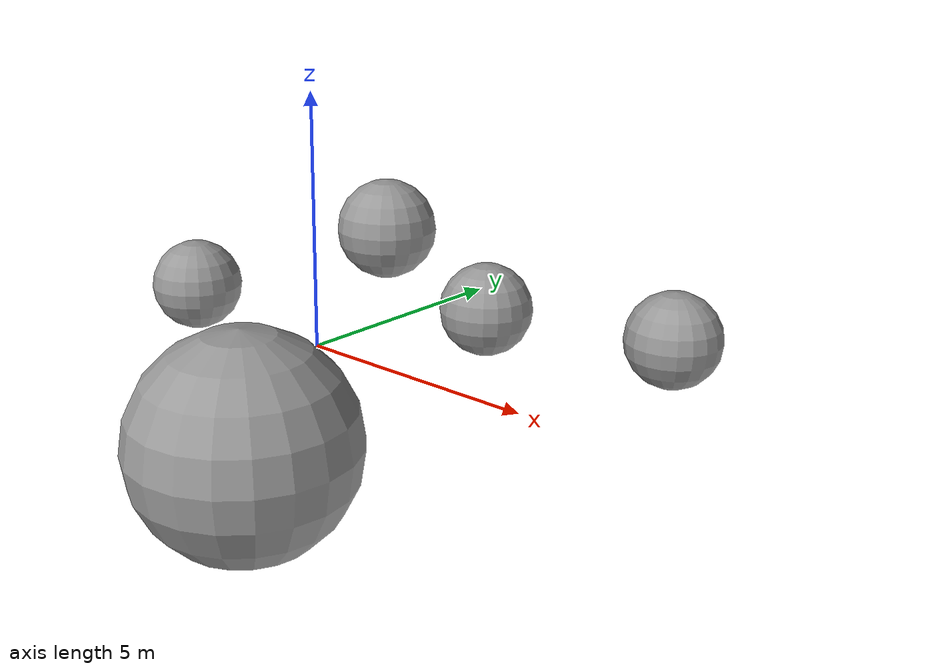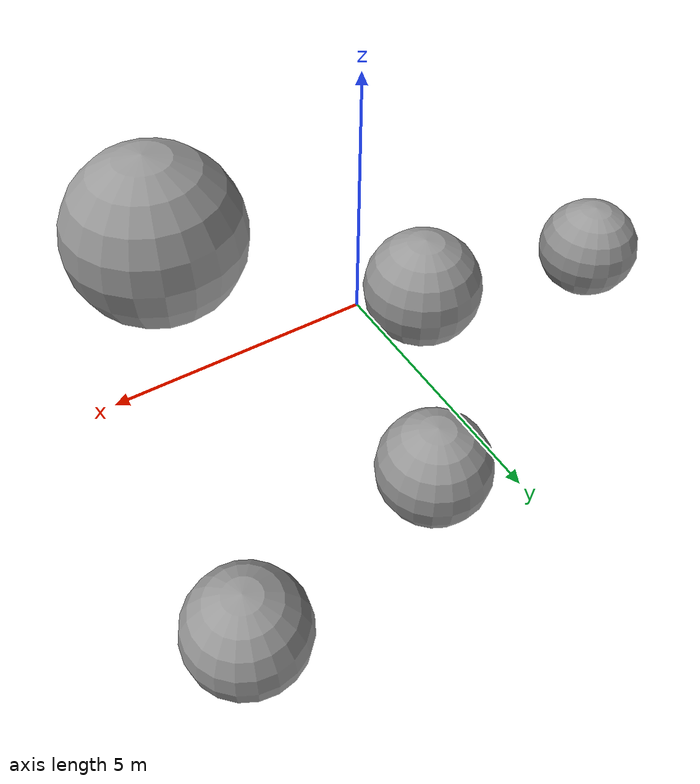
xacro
<?xml version="1.0"?>
<robot name="robot" xmlns:xacro="http://www.ros.org/wiki/xacro">

  <xacro:include filename="$(find mobile_manipulator)/world/urdf/sphere.xacro"/>

  <link name="world"/>

  <xacro:spawn_sphere sphere_name="sphere_0" r="100" xyz="5 5 0"/>
  <xacro:spawn_sphere sphere_name="sphere_1" r="100" xyz="1 4 0"/>
  <xacro:spawn_sphere sphere_name="sphere_2" r="100" xyz="-5 1 0"/>
  <xacro:spawn_sphere sphere_name="sphere_3" r="200" xyz="2.5 -4 0"/>
  <xacro:spawn_sphere sphere_name="sphere_4" r="100" xyz="0 2 2"/>

  <gazebo> <static>true</static></gazebo>
</robot>

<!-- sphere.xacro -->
<robot name="robot" xmlns:xacro="http://www.ros.org/wiki/xacro">
  <xacro:macro name="spawn_sphere" params="sphere_name:='sphere_0' r:='1' xyz:='0 0 0' rpy:='0 0 0' color:='Gray'">

  <link name="${sphere_name}">
    <inertial>
      <origin xyz="0 0 0" rpy="0 0 0"/>
      <mass value="1"/>
      <inertia ixx="1" ixy="0" ixz="0" iyy="1" iyz="0" izz="1"/>
    </inertial>
    <visual>
      <origin xyz="0 0 0" rpy="0 0 0"/>
      <geometry>
        <sphere radius="${r/100}"/>
      </geometry>
      <material name="${color}" />
    </visual>
    <collision>
      <origin xyz="0 0 0" rpy="0 0 0"/>
      <geometry>
        <sphere radius="${r/100}"/>
      </geometry>
    </collision>
  </link>
  <joint name="world_${sphere_name}_joint" type="fixed">
    <origin xyz="${xyz}" rpy="${rpy}"/>
    <parent link="world"/>
    <child link="${sphere_name}"/>
  </joint>
  <gazebo reference="${sphere_name}">
    <material>Gazebo/${color}</material>
  </gazebo>
</xacro:macro>
</robot>
